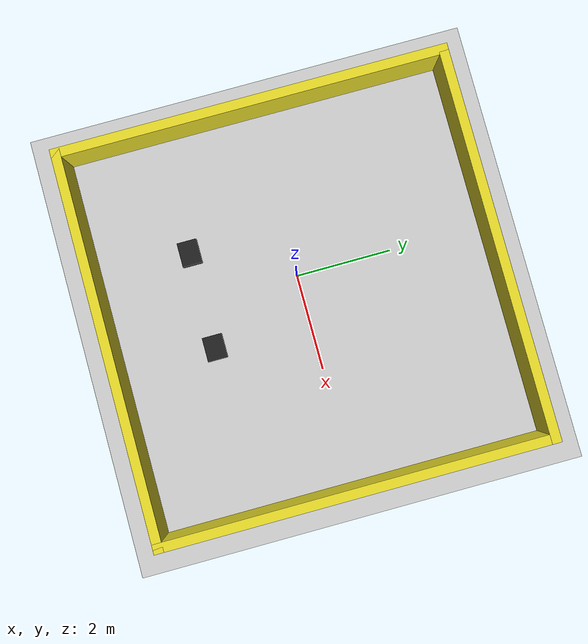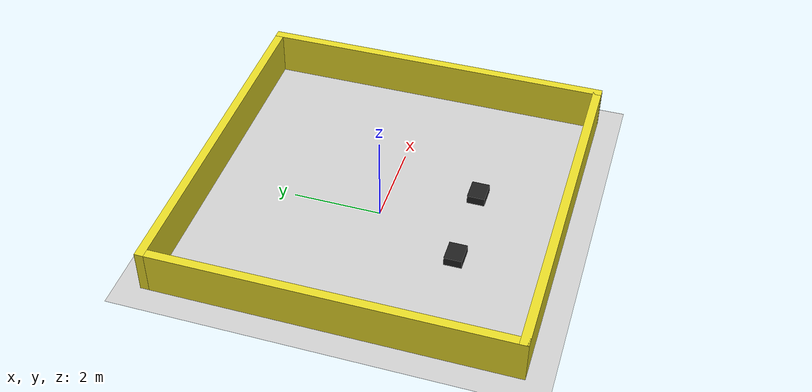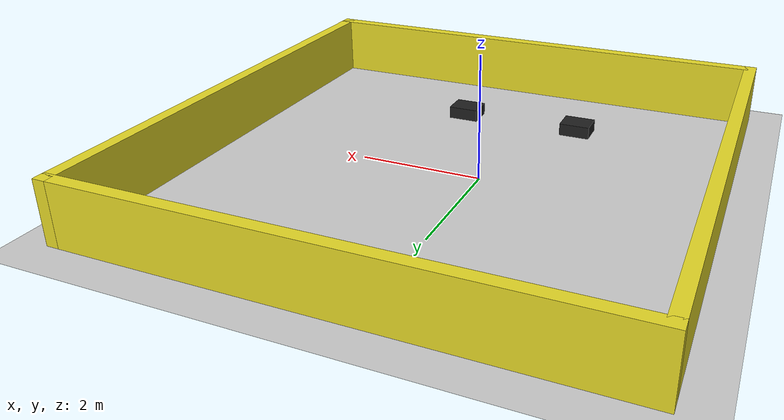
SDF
<sdf version="1.4">
 <world name="default">
  <light name="sun" type="directional">
   <pose>0 0 10 0 -0 0</pose>
   <diffuse>0.8 0.8 0.8 1</diffuse>
   <specular>0.2 0.2 0.2 1</specular>
   <attenuation>
    <range>1000</range>
    <constant>0.9</constant>
    <linear>0.01</linear>
    <quadratic>0.001</quadratic>
   </attenuation>
   <direction>-0.5 0.1 -0.9</direction>
  </light>
  <model name="ground_plane">
   <static>1</static>
   <link name="link">
    <collision name="collision">
     <geometry><plane><normal>0 0 1</normal><size>100 100</size></plane></geometry>
     <surface><friction><ode><mu>100</mu><mu2>50</mu2></ode></friction></surface>
    </collision>
    <visual name="visual">
     <cast_shadows>0</cast_shadows>
     <geometry><plane><normal>0 0 1</normal><size>100 100</size></plane></geometry>
     <material>
      <script><uri>file://media/materials/scripts/gazebo.material</uri><name>Gazebo/Grey</name></script>
     </material>
    </visual>
    <velocity_decay><linear>0</linear><angular>0</angular></velocity_decay>
   </link>
  </model>
  <physics type="ode">
   <max_step_size>0.001</max_step_size>
   <real_time_factor>1</real_time_factor>
   <real_time_update_rate>1000</real_time_update_rate>
   <gravity>0 0 -9.8</gravity>
  </physics>
  <scene><ambient>0.4 0.4 0.4 1</ambient><background>0.7 0.7 0.7 1</background><shadows>1</shadows></scene>
  <spherical_coordinates>
   <surface_model>EARTH_WGS84</surface_model>
   <latitude_deg>0</latitude_deg>
   <longitude_deg>0</longitude_deg>
   <elevation>0</elevation>
   <heading_deg>0</heading_deg>
  </spherical_coordinates>
  <model name="wall_test1_0">
   <link name="Wall_0">
    <collision name="Wall_0_Collision">
     <geometry><box><size>8.2 0.2 1</size></box></geometry>
     <pose>0 0 0.5 0 -0 0</pose>
    </collision>
    <visual name="Wall_0_Visual">
     <pose>0 0 0.5 0 -0 0</pose>
     <geometry><box><size>8.2 0.2 1</size></box></geometry>
     <material>
      <script><uri>file://media/materials/scripts/gazebo.material</uri><name>Gazebo/Yellow</name></script>
     </material>
    </visual>
    <velocity_decay><linear>0</linear><angular>0</angular></velocity_decay>
    <pose>0 -4 0 0 -0 0</pose>
   </link>
   <link name="Wall_1">
    <collision name="Wall_1_Collision">
     <geometry><box><size>8.2 0.2 1</size></box></geometry>
     <pose>0 0 0.5 0 -0 0</pose>
    </collision>
    <visual name="Wall_1_Visual">
     <pose>0 0 0.5 0 -0 0</pose>
     <geometry><box><size>8.2 0.2 1</size></box></geometry>
     <material>
      <script><uri>file://media/materials/scripts/gazebo.material</uri><name>Gazebo/Yellow</name></script>
     </material>
    </visual>
    <velocity_decay><linear>0</linear><angular>0</angular></velocity_decay>
    <pose>4 0 0 0 -0 1.5708</pose>
   </link>
   <link name="Wall_2">
    <collision name="Wall_2_Collision">
     <geometry><box><size>8.2 0.2 1</size></box></geometry>
     <pose>0 0 0.5 0 -0 0</pose>
    </collision>
    <visual name="Wall_2_Visual">
     <pose>0 0 0.5 0 -0 0</pose>
     <geometry><box><size>8.2 0.2 1</size></box></geometry>
     <material>
      <script><uri>file://media/materials/scripts/gazebo.material</uri><name>Gazebo/Yellow</name></script>
     </material>
    </visual>
    <velocity_decay><linear>0</linear><angular>0</angular></velocity_decay>
    <pose>0 4 0 0 -0 3.14159</pose>
   </link>
   <link name="Wall_3">
    <collision name="Wall_3_Collision">
     <geometry><box><size>8.2 0.2 1</size></box></geometry>
     <pose>0 0 0.5 0 -0 0</pose>
    </collision>
    <visual name="Wall_3_Visual">
     <pose>0 0 0.5 0 -0 0</pose>
     <geometry><box><size>8.2 0.2 1</size></box></geometry>
     <material>
      <script><uri>file://media/materials/scripts/gazebo.material</uri><name>Gazebo/Yellow</name></script>
     </material>
    </visual>
    <velocity_decay><linear>0</linear><angular>0</angular></velocity_decay>
    <pose>-4 0 0 0 0 -1.5708</pose>
   </link>
   <static>1</static>
   <pose>0.469055 0 0 0 -0 0</pose>
  </model>
  <model name="unit_box_1_0">
   <pose>1 -2 0.25 -1e-06 -1e-06 -2e-06</pose>
   <link name="link">
    <inertial>
     <mass>1</mass>
     <inertia><ixx>1</ixx><ixy>0</ixy><ixz>0</ixz><iyy>1</iyy><iyz>0</iyz><izz>1</izz></inertia>
    </inertial>
    <collision name="collision"><geometry><box><size>0.5 0.4 0.2</size></box></geometry></collision>
    <visual name="visual">
     <geometry><box><size>0.5 0.4 0.2</size></box></geometry>
     <material>
      <script><uri>file://media/materials/scripts/gazebo.material</uri><name>Gazebo/Black</name></script>
     </material>
    </visual>
    <velocity_decay><linear>0</linear><angular>0</angular></velocity_decay>
   </link>
   <static>0</static>
  </model>
  <model name="unit_box_2_0">
   <pose>-1 -2 0.25 0 -0 0</pose>
   <link name="link">
    <inertial>
     <mass>1</mass>
     <inertia><ixx>1</ixx><ixy>0</ixy><ixz>0</ixz><iyy>1</iyy><iyz>0</iyz><izz>1</izz></inertia>
    </inertial>
    <collision name="collision"><geometry><box><size>0.5 0.4 0.2</size></box></geometry></collision>
    <visual name="visual">
     <geometry><box><size>0.5 0.4 0.2</size></box></geometry>
     <material>
      <script><uri>file://media/materials/scripts/gazebo.material</uri><name>Gazebo/Black</name></script>
     </material>
    </visual>
    <velocity_decay><linear>0</linear><angular>0</angular></velocity_decay>
   </link>
   <static>0</static>
  </model>
 </world>
</sdf>
